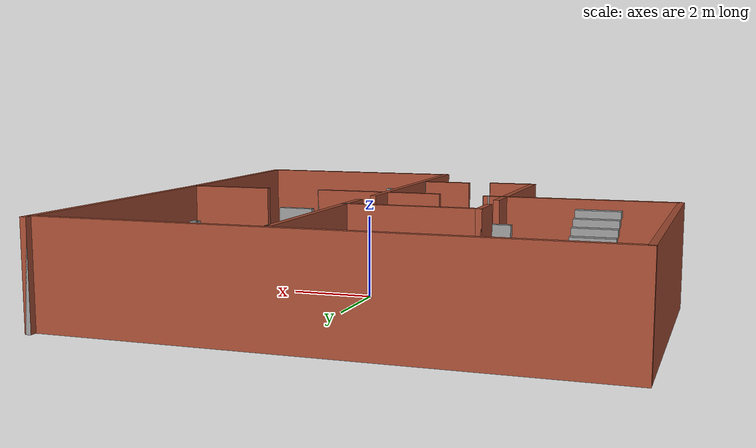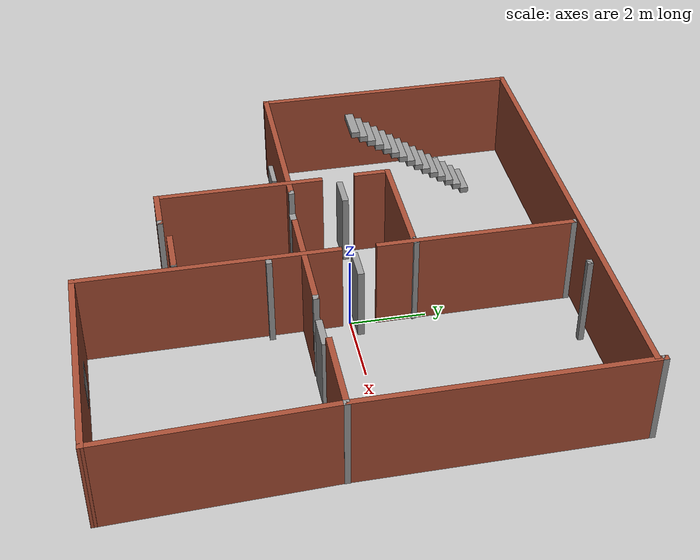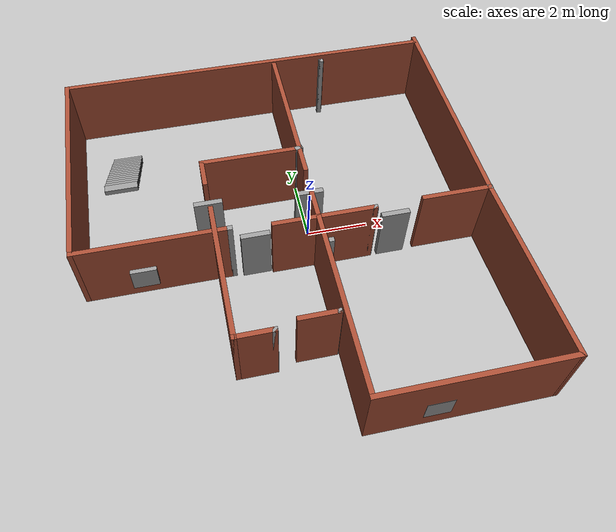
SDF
<?xml version='1.0'?>
<sdf version='1.6'>
  <model name='OneStore_House'>
    <pose frame=''>-0.836558 -0.330219 0 0 -0 0</pose>
    <link name='Door_0'>
      <collision name='Door_0_Collision'>
        <geometry>
          <box>
            <size>0.9 0.17 2</size>
          </box>
        </geometry>
        <pose frame=''>0 0 1 0 -0 0</pose>
      </collision>
      <visual name='Door_0_Visual'>
        <pose frame=''>0 0 1 0 -0 0</pose>
        <geometry>
          <box>
            <size>0.9 0.17 2</size>
          </box>
        </geometry>
        <material>
          <script>
            <uri>file://media/materials/scripts/gazebo.material</uri>
            <name>Gazebo/Grey</name>
          </script>
        </material>
      </visual>
      <pose frame=''>-2.3166 0.73376 0 0 -0 0</pose>
    </link>
    <link name='Door_1'>
      <collision name='Door_1_Collision'>
        <geometry>
          <box>
            <size>0.9 0.17 2</size>
          </box>
        </geometry>
        <pose frame=''>0 0 1 0 -0 0</pose>
      </collision>
      <visual name='Door_1_Visual'>
        <pose frame=''>0 0 1 0 -0 0</pose>
        <geometry>
          <box>
            <size>0.9 0.17 2</size>
          </box>
        </geometry>
        <material>
          <script>
            <uri>file://media/materials/scripts/gazebo.material</uri>
            <name>Gazebo/Grey</name>
          </script>
        </material>
      </visual>
      <pose frame=''>0.864788 0.519629 0 0 -0 0</pose>
    </link>
    <link name='Door_2'>
      <collision name='Door_2_Collision'>
        <geometry>
          <box>
            <size>0.9 0.17 2</size>
          </box>
        </geometry>
        <pose frame=''>0 0 1 0 -0 0</pose>
      </collision>
      <visual name='Door_2_Visual'>
        <pose frame=''>0 0 1 0 -0 0</pose>
        <geometry>
          <box>
            <size>0.9 0.17 2</size>
          </box>
        </geometry>
        <material>
          <script>
            <uri>file://media/materials/scripts/gazebo.material</uri>
            <name>Gazebo/Grey</name>
          </script>
        </material>
      </visual>
      <pose frame=''>-1.09299 -0.765161 0 0 -0 0</pose>
    </link>
    <link name='Door_3'>
      <collision name='Door_3_Collision'>
        <geometry>
          <box>
            <size>0.9 0.17 2</size>
          </box>
        </geometry>
        <pose frame=''>0 0 1 0 -0 0</pose>
      </collision>
      <visual name='Door_3_Visual'>
        <pose frame=''>0 0 1 0 -0 0</pose>
        <geometry>
          <box>
            <size>0.9 0.17 2</size>
          </box>
        </geometry>
        <material>
          <script>
            <uri>file://media/materials/scripts/gazebo.material</uri>
            <name>Gazebo/Grey</name>
          </script>
        </material>
      </visual>
      <pose frame=''>3.28142 -0.826342 0 0 -0 0</pose>
    </link>
    <link name='Stairs_0'>
      <visual name='Stairs_0_Visual_0'>
        <pose frame=''>-4.84735 4.77007 0.083333 0 -0 0</pose>
        <geometry>
          <box>
            <size>1 0.233333 0.166667</size>
          </box>
        </geometry>
        <material>
          <script>
            <uri>file://media/materials/scripts/gazebo.material</uri>
            <name>Gazebo/Grey</name>
          </script>
          <ambient>1 1 1 1</ambient>
        </material>
        <meta>
          <layer>0</layer>
        </meta>
      </visual>
      <collision name='Stairs_0_Collision_0'>
        <geometry>
          <box>
            <size>1 0.233333 0.166667</size>
          </box>
        </geometry>
        <pose frame=''>-4.84735 4.77007 0.083333 0 -0 0</pose>
      </collision>
      <visual name='Stairs_0_Visual_1'>
        <pose frame=''>-4.84735 4.53674 0.25 0 -0 0</pose>
        <geometry>
          <box>
            <size>1 0.233333 0.166667</size>
          </box>
        </geometry>
        <material>
          <script>
            <uri>file://media/materials/scripts/gazebo.material</uri>
            <name>Gazebo/Grey</name>
          </script>
          <ambient>1 1 1 1</ambient>
        </material>
        <meta>
          <layer>0</layer>
        </meta>
      </visual>
      <collision name='Stairs_0_Collision_1'>
        <geometry>
          <box>
            <size>1 0.233333 0.166667</size>
          </box>
        </geometry>
        <pose frame=''>-4.84735 4.53674 0.25 0 -0 0</pose>
      </collision>
      <visual name='Stairs_0_Visual_2'>
        <pose frame=''>-4.84735 4.3034 0.416667 0 -0 0</pose>
        <geometry>
          <box>
            <size>1 0.233333 0.166667</size>
          </box>
        </geometry>
        <material>
          <script>
            <uri>file://media/materials/scripts/gazebo.material</uri>
            <name>Gazebo/Grey</name>
          </script>
          <ambient>1 1 1 1</ambient>
        </material>
        <meta>
          <layer>0</layer>
        </meta>
      </visual>
      <collision name='Stairs_0_Collision_2'>
        <geometry>
          <box>
            <size>1 0.233333 0.166667</size>
          </box>
        </geometry>
        <pose frame=''>-4.84735 4.3034 0.416667 0 -0 0</pose>
      </collision>
      <visual name='Stairs_0_Visual_3'>
        <pose frame=''>-4.84735 4.07007 0.583333 0 -0 0</pose>
        <geometry>
          <box>
            <size>1 0.233333 0.166667</size>
          </box>
        </geometry>
        <material>
          <script>
            <uri>file://media/materials/scripts/gazebo.material</uri>
            <name>Gazebo/Grey</name>
          </script>
          <ambient>1 1 1 1</ambient>
        </material>
        <meta>
          <layer>0</layer>
        </meta>
      </visual>
      <collision name='Stairs_0_Collision_3'>
        <geometry>
          <box>
            <size>1 0.233333 0.166667</size>
          </box>
        </geometry>
        <pose frame=''>-4.84735 4.07007 0.583333 0 -0 0</pose>
      </collision>
      <visual name='Stairs_0_Visual_4'>
        <pose frame=''>-4.84735 3.83674 0.75 0 -0 0</pose>
        <geometry>
          <box>
            <size>1 0.233333 0.166667</size>
          </box>
        </geometry>
        <material>
          <script>
            <uri>file://media/materials/scripts/gazebo.material</uri>
            <name>Gazebo/Grey</name>
          </script>
          <ambient>1 1 1 1</ambient>
        </material>
        <meta>
          <layer>0</layer>
        </meta>
      </visual>
      <collision name='Stairs_0_Collision_4'>
        <geometry>
          <box>
            <size>1 0.233333 0.166667</size>
          </box>
        </geometry>
        <pose frame=''>-4.84735 3.83674 0.75 0 -0 0</pose>
      </collision>
      <visual name='Stairs_0_Visual_5'>
        <pose frame=''>-4.84735 3.6034 0.916667 0 -0 0</pose>
        <geometry>
          <box>
            <size>1 0.233333 0.166667</size>
          </box>
        </geometry>
        <material>
          <script>
            <uri>file://media/materials/scripts/gazebo.material</uri>
            <name>Gazebo/Grey</name>
          </script>
          <ambient>1 1 1 1</ambient>
        </material>
        <meta>
          <layer>0</layer>
        </meta>
      </visual>
      <collision name='Stairs_0_Collision_5'>
        <geometry>
          <box>
            <size>1 0.233333 0.166667</size>
          </box>
        </geometry>
        <pose frame=''>-4.84735 3.6034 0.916667 0 -0 0</pose>
      </collision>
      <visual name='Stairs_0_Visual_6'>
        <pose frame=''>-4.84735 3.37007 1.08333 0 -0 0</pose>
        <geometry>
          <box>
            <size>1 0.233333 0.166667</size>
          </box>
        </geometry>
        <material>
          <script>
            <uri>file://media/materials/scripts/gazebo.material</uri>
            <name>Gazebo/Grey</name>
          </script>
          <ambient>1 1 1 1</ambient>
        </material>
        <meta>
          <layer>0</layer>
        </meta>
      </visual>
      <collision name='Stairs_0_Collision_6'>
        <geometry>
          <box>
            <size>1 0.233333 0.166667</size>
          </box>
        </geometry>
        <pose frame=''>-4.84735 3.37007 1.08333 0 -0 0</pose>
      </collision>
      <visual name='Stairs_0_Visual_7'>
        <pose frame=''>-4.84735 3.13674 1.25 0 -0 0</pose>
        <geometry>
          <box>
            <size>1 0.233333 0.166667</size>
          </box>
        </geometry>
        <material>
          <script>
            <uri>file://media/materials/scripts/gazebo.material</uri>
            <name>Gazebo/Grey</name>
          </script>
          <ambient>1 1 1 1</ambient>
        </material>
        <meta>
          <layer>0</layer>
        </meta>
      </visual>
      <collision name='Stairs_0_Collision_7'>
        <geometry>
          <box>
            <size>1 0.233333 0.166667</size>
          </box>
        </geometry>
        <pose frame=''>-4.84735 3.13674 1.25 0 -0 0</pose>
      </collision>
      <visual name='Stairs_0_Visual_8'>
        <pose frame=''>-4.84735 2.9034 1.41667 0 -0 0</pose>
        <geometry>
          <box>
            <size>1 0.233333 0.166667</size>
          </box>
        </geometry>
        <material>
          <script>
            <uri>file://media/materials/scripts/gazebo.material</uri>
            <name>Gazebo/Grey</name>
          </script>
          <ambient>1 1 1 1</ambient>
        </material>
        <meta>
          <layer>0</layer>
        </meta>
      </visual>
      <collision name='Stairs_0_Collision_8'>
        <geometry>
          <box>
            <size>1 0.233333 0.166667</size>
          </box>
        </geometry>
        <pose frame=''>-4.84735 2.9034 1.41667 0 -0 0</pose>
      </collision>
      <visual name='Stairs_0_Visual_9'>
        <pose frame=''>-4.84735 2.67007 1.58333 0 -0 0</pose>
        <geometry>
          <box>
            <size>1 0.233333 0.166667</size>
          </box>
        </geometry>
        <material>
          <script>
            <uri>file://media/materials/scripts/gazebo.material</uri>
            <name>Gazebo/Grey</name>
          </script>
          <ambient>1 1 1 1</ambient>
        </material>
        <meta>
          <layer>0</layer>
        </meta>
      </visual>
      <collision name='Stairs_0_Collision_9'>
        <geometry>
          <box>
            <size>1 0.233333 0.166667</size>
          </box>
        </geometry>
        <pose frame=''>-4.84735 2.67007 1.58333 0 -0 0</pose>
      </collision>
      <visual name='Stairs_0_Visual_10'>
        <pose frame=''>-4.84735 2.43674 1.75 0 -0 0</pose>
        <geometry>
          <box>
            <size>1 0.233333 0.166667</size>
          </box>
        </geometry>
        <material>
          <script>
            <uri>file://media/materials/scripts/gazebo.material</uri>
            <name>Gazebo/Grey</name>
          </script>
          <ambient>1 1 1 1</ambient>
        </material>
        <meta>
          <layer>0</layer>
        </meta>
      </visual>
      <collision name='Stairs_0_Collision_10'>
        <geometry>
          <box>
            <size>1 0.233333 0.166667</size>
          </box>
        </geometry>
        <pose frame=''>-4.84735 2.43674 1.75 0 -0 0</pose>
      </collision>
      <visual name='Stairs_0_Visual_11'>
        <pose frame=''>-4.84735 2.2034 1.91667 0 -0 0</pose>
        <geometry>
          <box>
            <size>1 0.233333 0.166667</size>
          </box>
        </geometry>
        <material>
          <script>
            <uri>file://media/materials/scripts/gazebo.material</uri>
            <name>Gazebo/Grey</name>
          </script>
          <ambient>1 1 1 1</ambient>
        </material>
        <meta>
          <layer>0</layer>
        </meta>
      </visual>
      <collision name='Stairs_0_Collision_11'>
        <geometry>
          <box>
            <size>1 0.233333 0.166667</size>
          </box>
        </geometry>
        <pose frame=''>-4.84735 2.2034 1.91667 0 -0 0</pose>
      </collision>
      <visual name='Stairs_0_Visual_12'>
        <pose frame=''>-4.84735 1.97007 2.08333 0 -0 0</pose>
        <geometry>
          <box>
            <size>1 0.233333 0.166667</size>
          </box>
        </geometry>
        <material>
          <script>
            <uri>file://media/materials/scripts/gazebo.material</uri>
            <name>Gazebo/Grey</name>
          </script>
          <ambient>1 1 1 1</ambient>
        </material>
        <meta>
          <layer>0</layer>
        </meta>
      </visual>
      <collision name='Stairs_0_Collision_12'>
        <geometry>
          <box>
            <size>1 0.233333 0.166667</size>
          </box>
        </geometry>
        <pose frame=''>-4.84735 1.97007 2.08333 0 -0 0</pose>
      </collision>
      <visual name='Stairs_0_Visual_13'>
        <pose frame=''>-4.84735 1.73674 2.25 0 -0 0</pose>
        <geometry>
          <box>
            <size>1 0.233333 0.166667</size>
          </box>
        </geometry>
        <material>
          <script>
            <uri>file://media/materials/scripts/gazebo.material</uri>
            <name>Gazebo/Grey</name>
          </script>
          <ambient>1 1 1 1</ambient>
        </material>
        <meta>
          <layer>0</layer>
        </meta>
      </visual>
      <collision name='Stairs_0_Collision_13'>
        <geometry>
          <box>
            <size>1 0.233333 0.166667</size>
          </box>
        </geometry>
        <pose frame=''>-4.84735 1.73674 2.25 0 -0 0</pose>
      </collision>
      <visual name='Stairs_0_Visual_14'>
        <pose frame=''>-4.84735 1.5034 2.41667 0 -0 0</pose>
        <geometry>
          <box>
            <size>1 0.233333 0.166667</size>
          </box>
        </geometry>
        <material>
          <script>
            <uri>file://media/materials/scripts/gazebo.material</uri>
            <name>Gazebo/Grey</name>
          </script>
          <ambient>1 1 1 1</ambient>
        </material>
        <meta>
          <layer>0</layer>
        </meta>
      </visual>
      <collision name='Stairs_0_Collision_14'>
        <geometry>
          <box>
            <size>1 0.233333 0.166667</size>
          </box>
        </geometry>
        <pose frame=''>-4.84735 1.5034 2.41667 0 -0 0</pose>
      </collision>
    </link>
    <link name='Wall_11'>
      <collision name='Wall_11_Collision'>
        <geometry>
          <box>
            <size>12.75 0.15 2.5</size>
          </box>
        </geometry>
        <pose frame=''>0 0 1.25 0 -0 0</pose>
      </collision>
      <visual name='Wall_11_Visual'>
        <pose frame=''>0 0 1.25 0 -0 0</pose>
        <geometry>
          <box>
            <size>12.75 0.15 2.5</size>
          </box>
        </geometry>
        <material>
          <script>
            <uri>file://media/materials/scripts/gazebo.material</uri>
            <name>Gazebo/Bricks</name>
          </script>
          <ambient>1 1 1 1</ambient>
        </material>
        <meta>
          <layer>0</layer>
        </meta>
      </visual>
      <pose frame=''>-0.130955 6.36951 0 0 -0 3.14159</pose>
    </link>
    <link name='Wall_12'>
      <collision name='Wall_12_Collision'>
        <geometry>
          <box>
            <size>7.25 0.15 2.5</size>
          </box>
        </geometry>
        <pose frame=''>0 0 1.25 0 -0 0</pose>
      </collision>
      <visual name='Wall_12_Visual'>
        <pose frame=''>0 0 1.25 0 -0 0</pose>
        <geometry>
          <box>
            <size>7.25 0.15 2.5</size>
          </box>
        </geometry>
        <material>
          <script>
            <uri>file://media/materials/scripts/gazebo.material</uri>
            <name>Gazebo/Bricks</name>
          </script>
          <ambient>1 1 1 1</ambient>
        </material>
        <meta>
          <layer>0</layer>
        </meta>
      </visual>
      <pose frame=''>-6.43095 2.81951 0 0 -0 -1.5708</pose>
    </link>
    <link name='Wall_13'>
      <collision name='Wall_13_Collision'>
        <geometry>
          <box>
            <size>4.75 0.15 2.5</size>
          </box>
        </geometry>
        <pose frame=''>0 0 1.25 0 -0 0</pose>
      </collision>
      <visual name='Wall_13_Visual'>
        <pose frame=''>0 0 1.25 0 -0 0</pose>
        <geometry>
          <box>
            <size>4.75 0.15 2.5</size>
          </box>
        </geometry>
        <material>
          <script>
            <uri>file://media/materials/scripts/gazebo.material</uri>
            <name>Gazebo/Bricks</name>
          </script>
          <ambient>1 1 1 1</ambient>
        </material>
        <meta>
          <layer>0</layer>
        </meta>
      </visual>
      <pose frame=''>-4.13095 -0.730486 0 0 -0 0</pose>
    </link>
    <link name='Wall_14'>
      <collision name='Wall_14_Collision'>
        <geometry>
          <box>
            <size>0.16 0.15 2.5</size>
          </box>
        </geometry>
        <pose frame=''>0 0 1.25 0 -0 0</pose>
      </collision>
      <visual name='Wall_14_Visual'>
        <pose frame=''>0 0 1.25 0 -0 0</pose>
        <geometry>
          <box>
            <size>0.16 0.15 2.5</size>
          </box>
        </geometry>
        <material>
          <script>
            <uri>file://media/materials/scripts/gazebo.material</uri>
            <name>Gazebo/Grey</name>
          </script>
          <ambient>1 1 1 1</ambient>
        </material>
        <meta>
          <layer>0</layer>
        </meta>
      </visual>
      <pose frame=''>-1.82595 -0.730486 0 0 -0 0</pose>
    </link>
    <link name='Wall_16'>
      <collision name='Wall_16_Collision'>
        <geometry>
          <box>
            <size>3.25 0.15 2.5</size>
          </box>
        </geometry>
        <pose frame=''>0 0 1.25 0 -0 0</pose>
      </collision>
      <visual name='Wall_16_Visual'>
        <pose frame=''>0 0 1.25 0 -0 0</pose>
        <geometry>
          <box>
            <size>3.25 0.15 2.5</size>
          </box>
        </geometry>
        <material>
          <script>
            <uri>file://media/materials/scripts/gazebo.material</uri>
            <name>Gazebo/Bricks</name>
          </script>
          <ambient>1 1 1 1</ambient>
        </material>
        <meta>
          <layer>0</layer>
        </meta>
      </visual>
      <pose frame=''>1.02157 -0.841259 0 0 -0 0</pose>
    </link>
    <link name='Wall_17'>
      <collision name='Wall_17_Collision'>
        <geometry>
          <box>
            <size>0.16 0.15 2.5</size>
          </box>
        </geometry>
        <pose frame=''>0 0 1.25 0 -0 0</pose>
      </collision>
      <visual name='Wall_17_Visual'>
        <pose frame=''>0 0 1.25 0 -0 0</pose>
        <geometry>
          <box>
            <size>0.16 0.15 2.5</size>
          </box>
        </geometry>
        <material>
          <script>
            <uri>file://media/materials/scripts/gazebo.material</uri>
            <name>Gazebo/Grey</name>
          </script>
          <ambient>1 1 1 1</ambient>
        </material>
        <meta>
          <layer>0</layer>
        </meta>
      </visual>
      <pose frame=''>2.57657 -0.841259 0 0 -0 0</pose>
    </link>
    <link name='Wall_19'>
      <collision name='Wall_19_Collision'>
        <geometry>
          <box>
            <size>5.25 0.15 2.5</size>
          </box>
        </geometry>
        <pose frame=''>0 0 1.25 0 -0 0</pose>
      </collision>
      <visual name='Wall_19_Visual'>
        <pose frame=''>0 0 1.25 0 -0 0</pose>
        <geometry>
          <box>
            <size>5.25 0.15 2.5</size>
          </box>
        </geometry>
        <material>
          <script>
            <uri>file://media/materials/scripts/gazebo.material</uri>
            <name>Gazebo/Bricks</name>
          </script>
          <ambient>1 1 1 1</ambient>
        </material>
        <meta>
          <layer>0</layer>
        </meta>
      </visual>
      <pose frame=''>0.854779 3.62396 0 0 -0 1.5708</pose>
    </link>
    <link name='Wall_20'>
      <collision name='Wall_20_Collision'>
        <geometry>
          <box>
            <size>0.15 0.15 2.5</size>
          </box>
        </geometry>
        <pose frame=''>0 0 1.25 0 -0 0</pose>
      </collision>
      <visual name='Wall_20_Visual'>
        <pose frame=''>0 0 1.25 0 -0 0</pose>
        <geometry>
          <box>
            <size>0.15 0.15 2.5</size>
          </box>
        </geometry>
        <material>
          <script>
            <uri>file://media/materials/scripts/gazebo.material</uri>
            <name>Gazebo/Grey</name>
          </script>
          <ambient>1 1 1 1</ambient>
        </material>
        <meta>
          <layer>0</layer>
        </meta>
      </visual>
      <pose frame=''>0.854779 6.17396 0 0 -0 0</pose>
    </link>
    <link name='Wall_22'>
      <collision name='Wall_22_Collision'>
        <geometry>
          <box>
            <size>1 0.15 2.5</size>
          </box>
        </geometry>
        <pose frame=''>0 0 1.25 0 -0 0</pose>
      </collision>
      <visual name='Wall_22_Visual'>
        <pose frame=''>0 0 1.25 0 -0 0</pose>
        <geometry>
          <box>
            <size>1 0.15 2.5</size>
          </box>
        </geometry>
        <material>
          <script>
            <uri>file://media/materials/scripts/gazebo.material</uri>
            <name>Gazebo/Bricks</name>
          </script>
          <ambient>1 1 1 1</ambient>
        </material>
        <meta>
          <layer>0</layer>
        </meta>
      </visual>
      <pose frame=''>-2.31065 1.55215 0 0 -0 1.5708</pose>
    </link>
    <link name='Wall_23'>
      <collision name='Wall_23_Collision'>
        <geometry>
          <box>
            <size>3.25 0.15 2.5</size>
          </box>
        </geometry>
        <pose frame=''>0 0 1.25 0 -0 0</pose>
      </collision>
      <visual name='Wall_23_Visual'>
        <pose frame=''>0 0 1.25 0 -0 0</pose>
        <geometry>
          <box>
            <size>3.25 0.15 2.5</size>
          </box>
        </geometry>
        <material>
          <script>
            <uri>file://media/materials/scripts/gazebo.material</uri>
            <name>Gazebo/Bricks</name>
          </script>
          <ambient>1 1 1 1</ambient>
        </material>
        <meta>
          <layer>0</layer>
        </meta>
      </visual>
      <pose frame=''>-0.760645 1.97715 0 0 -0 0</pose>
    </link>
    <link name='Wall_24'>
      <collision name='Wall_24_Collision'>
        <geometry>
          <box>
            <size>0.25 0.15 2.5</size>
          </box>
        </geometry>
        <pose frame=''>0 0 1.25 0 -0 0</pose>
      </collision>
      <visual name='Wall_24_Visual'>
        <pose frame=''>0 0 1.25 0 -0 0</pose>
        <geometry>
          <box>
            <size>0.25 0.15 2.5</size>
          </box>
        </geometry>
        <material>
          <script>
            <uri>file://media/materials/scripts/gazebo.material</uri>
            <name>Gazebo/Grey</name>
          </script>
          <ambient>1 1 1 1</ambient>
        </material>
        <meta>
          <layer>0</layer>
        </meta>
      </visual>
      <pose frame=''>0.837651 1.9901 0 0 -0 0.261799</pose>
    </link>
    <link name='Wall_26'>
      <collision name='Wall_26_Collision'>
        <geometry>
          <box>
            <size>2.25 0.15 2.5</size>
          </box>
        </geometry>
        <pose frame=''>0 0 1.25 0 -0 0</pose>
      </collision>
      <visual name='Wall_26_Visual'>
        <pose frame=''>0 0 1.25 0 -0 0</pose>
        <geometry>
          <box>
            <size>2.25 0.15 2.5</size>
          </box>
        </geometry>
        <material>
          <script>
            <uri>file://media/materials/scripts/gazebo.material</uri>
            <name>Gazebo/Bricks</name>
          </script>
          <ambient>1 1 1 1</ambient>
        </material>
        <meta>
          <layer>0</layer>
        </meta>
      </visual>
      <pose frame=''>5.19082 -0.800542 0 0 -0 0</pose>
    </link>
    <link name='Wall_27'>
      <collision name='Wall_27_Collision'>
        <geometry>
          <box>
            <size>7.5 0.15 2.5</size>
          </box>
        </geometry>
        <pose frame=''>0 0 1.25 0 -0 0</pose>
      </collision>
      <visual name='Wall_27_Visual'>
        <pose frame=''>0 0 1.25 0 -0 0</pose>
        <geometry>
          <box>
            <size>7.5 0.15 2.5</size>
          </box>
        </geometry>
        <material>
          <script>
            <uri>file://media/materials/scripts/gazebo.material</uri>
            <name>Gazebo/Bricks</name>
          </script>
          <ambient>1 1 1 1</ambient>
        </material>
        <meta>
          <layer>0</layer>
        </meta>
      </visual>
      <pose frame=''>6.24082 2.87446 0 0 -0 1.5708</pose>
    </link>
    <link name='Wall_28'>
      <collision name='Wall_28_Collision'>
        <geometry>
          <box>
            <size>0.15 0.15 2.5</size>
          </box>
        </geometry>
        <pose frame=''>0 0 1.25 0 -0 0</pose>
      </collision>
      <visual name='Wall_28_Visual'>
        <pose frame=''>0 0 1.25 0 -0 0</pose>
        <geometry>
          <box>
            <size>0.15 0.15 2.5</size>
          </box>
        </geometry>
        <material>
          <script>
            <uri>file://media/materials/scripts/gazebo.material</uri>
            <name>Gazebo/Grey</name>
          </script>
          <ambient>1 1 1 1</ambient>
        </material>
        <meta>
          <layer>0</layer>
        </meta>
      </visual>
      <pose frame=''>6.24082 6.54946 0 0 -0 0</pose>
    </link>
    <link name='Wall_3'>
      <collision name='Wall_3_Collision'>
        <geometry>
          <box>
            <size>0.15 0.15 2.5</size>
          </box>
        </geometry>
        <pose frame=''>0 0 1.25 0 -0 0</pose>
      </collision>
      <visual name='Wall_3_Visual'>
        <pose frame=''>0 0 1.25 0 -0 0</pose>
        <geometry>
          <box>
            <size>0.15 0.15 2.5</size>
          </box>
        </geometry>
        <material>
          <script>
            <uri>file://media/materials/scripts/gazebo.material</uri>
            <name>Gazebo/Grey</name>
          </script>
          <ambient>1 1 1 1</ambient>
        </material>
        <meta>
          <layer>0</layer>
        </meta>
      </visual>
      <pose frame=''>2.54467 6.02205 0 0 -0 0</pose>
    </link>
    <link name='Wall_31'>
      <collision name='Wall_31_Collision'>
        <geometry>
          <box>
            <size>0.16 0.15 2.5</size>
          </box>
        </geometry>
        <pose frame=''>0 0 1.25 0 -0 0</pose>
      </collision>
      <visual name='Wall_31_Visual'>
        <pose frame=''>0 0 1.25 0 -0 0</pose>
        <geometry>
          <box>
            <size>0.16 0.15 2.5</size>
          </box>
        </geometry>
        <material>
          <script>
            <uri>file://media/materials/scripts/gazebo.material</uri>
            <name>Gazebo/Grey</name>
          </script>
          <ambient>1 1 1 1</ambient>
        </material>
        <meta>
          <layer>0</layer>
        </meta>
      </visual>
      <pose frame=''>0.994053 -1.74258 0 0 -0 0</pose>
    </link>
    <link name='Wall_33'>
      <collision name='Wall_33_Collision'>
        <geometry>
          <box>
            <size>6.75 0.15 2.5</size>
          </box>
        </geometry>
        <pose frame=''>0 0 1.25 0 -0 0</pose>
      </collision>
      <visual name='Wall_33_Visual'>
        <pose frame=''>0 0 1.25 0 -0 0</pose>
        <geometry>
          <box>
            <size>6.75 0.15 2.5</size>
          </box>
        </geometry>
        <material>
          <script>
            <uri>file://media/materials/scripts/gazebo.material</uri>
            <name>Gazebo/Bricks</name>
          </script>
          <ambient>1 1 1 1</ambient>
        </material>
        <meta>
          <layer>0</layer>
        </meta>
      </visual>
      <pose frame=''>0.828546 -3.24705 0 0 -0 -1.5708</pose>
    </link>
    <link name='Wall_34'>
      <collision name='Wall_34_Collision'>
        <geometry>
          <box>
            <size>5.75 0.15 2.5</size>
          </box>
        </geometry>
        <pose frame=''>0 0 1.25 0 -0 0</pose>
      </collision>
      <visual name='Wall_34_Visual'>
        <pose frame=''>0 0 1.25 0 -0 0</pose>
        <geometry>
          <box>
            <size>5.75 0.15 2.5</size>
          </box>
        </geometry>
        <material>
          <script>
            <uri>file://media/materials/scripts/gazebo.material</uri>
            <name>Gazebo/Bricks</name>
          </script>
          <ambient>1 1 1 1</ambient>
        </material>
        <meta>
          <layer>0</layer>
        </meta>
      </visual>
      <pose frame=''>3.62855 -6.54705 0 0 -0 0</pose>
    </link>
    <link name='Wall_35'>
      <collision name='Wall_35_Collision'>
        <geometry>
          <box>
            <size>5.89957 0.15 2.5</size>
          </box>
        </geometry>
        <pose frame=''>0 0 1.25 0 -0 0</pose>
      </collision>
      <visual name='Wall_35_Visual'>
        <pose frame=''>0 0 1.25 0 -0 0</pose>
        <geometry>
          <box>
            <size>5.89957 0.15 2.5</size>
          </box>
        </geometry>
        <material>
          <script>
            <uri>file://media/materials/scripts/gazebo.material</uri>
            <name>Gazebo/Bricks</name>
          </script>
          <ambient>1 1 1 1</ambient>
        </material>
        <meta>
          <layer>0</layer>
        </meta>
      </visual>
      <pose frame=''>6.33468 -3.6738 0 0 -0 1.60345</pose>
    </link>
    <link name='Wall_36'>
      <collision name='Wall_36_Collision'>
        <geometry>
          <box>
            <size>0.16 0.15 2.5</size>
          </box>
        </geometry>
        <pose frame=''>0 0 1.25 0 -0 0</pose>
      </collision>
      <visual name='Wall_36_Visual'>
        <pose frame=''>0 0 1.25 0 -0 0</pose>
        <geometry>
          <box>
            <size>0.16 0.15 2.5</size>
          </box>
        </geometry>
        <material>
          <script>
            <uri>file://media/materials/scripts/gazebo.material</uri>
            <name>Gazebo/Grey</name>
          </script>
          <ambient>1 1 1 1</ambient>
        </material>
        <meta>
          <layer>0</layer>
        </meta>
      </visual>
      <pose frame=''>6.24582 -0.800542 0 0 -0 0</pose>
    </link>
    <link name='Wall_38'>
      <collision name='Wall_38_Collision'>
        <geometry>
          <box>
            <size>4.5 0.15 2.5</size>
          </box>
        </geometry>
        <pose frame=''>0 0 1.25 0 -0 0</pose>
      </collision>
      <visual name='Wall_38_Visual'>
        <pose frame=''>0 0 1.25 0 -0 0</pose>
        <geometry>
          <box>
            <size>4.5 0.15 2.5</size>
          </box>
        </geometry>
        <material>
          <script>
            <uri>file://media/materials/scripts/gazebo.material</uri>
            <name>Gazebo/Bricks</name>
          </script>
          <ambient>1 1 1 1</ambient>
        </material>
        <meta>
          <layer>0</layer>
        </meta>
      </visual>
      <pose frame=''>-2.2746 -2.06855 0 0 -0 -1.5708</pose>
    </link>
    <link name='Wall_39'>
      <collision name='Wall_39_Collision'>
        <geometry>
          <box>
            <size>1.25 0.15 2.5</size>
          </box>
        </geometry>
        <pose frame=''>0 0 1.25 0 -0 0</pose>
      </collision>
      <visual name='Wall_39_Visual'>
        <pose frame=''>0 0 1.25 0 -0 0</pose>
        <geometry>
          <box>
            <size>1.25 0.15 2.5</size>
          </box>
        </geometry>
        <material>
          <script>
            <uri>file://media/materials/scripts/gazebo.material</uri>
            <name>Gazebo/Bricks</name>
          </script>
          <ambient>1 1 1 1</ambient>
        </material>
        <meta>
          <layer>0</layer>
        </meta>
      </visual>
      <pose frame=''>-1.7246 -4.24355 0 0 -0 0</pose>
    </link>
    <link name='Wall_4'>
      <collision name='Wall_4_Collision'>
        <geometry>
          <box>
            <size>0.16 0.15 2.5</size>
          </box>
        </geometry>
        <pose frame=''>0 0 1.25 0 -0 0</pose>
      </collision>
      <visual name='Wall_4_Visual'>
        <pose frame=''>0 0 1.25 0 -0 0</pose>
        <geometry>
          <box>
            <size>0.16 0.15 2.5</size>
          </box>
        </geometry>
        <material>
          <script>
            <uri>file://media/materials/scripts/gazebo.material</uri>
            <name>Gazebo/Grey</name>
          </script>
          <ambient>1 1 1 1</ambient>
        </material>
        <meta>
          <layer>0</layer>
        </meta>
      </visual>
      <pose frame=''>2.54967 6.02205 0 0 -0 0</pose>
    </link>
    <link name='Wall_40'>
      <collision name='Wall_40_Collision'>
        <geometry>
          <box>
            <size>0.16 0.15 2.5</size>
          </box>
        </geometry>
        <pose frame=''>0 0 1.25 0 -0 0</pose>
      </collision>
      <visual name='Wall_40_Visual'>
        <pose frame=''>0 0 1.25 0 -0 0</pose>
        <geometry>
          <box>
            <size>0.16 0.15 2.5</size>
          </box>
        </geometry>
        <material>
          <script>
            <uri>file://media/materials/scripts/gazebo.material</uri>
            <name>Gazebo/Grey</name>
          </script>
          <ambient>1 1 1 1</ambient>
        </material>
        <meta>
          <layer>0</layer>
        </meta>
      </visual>
      <pose frame=''>-1.1696 -4.24355 0 0 -0 0</pose>
    </link>
    <link name='Wall_42'>
      <collision name='Wall_42_Collision'>
        <geometry>
          <box>
            <size>1.25 0.15 2.5</size>
          </box>
        </geometry>
        <pose frame=''>0 0 1.25 0 -0 0</pose>
      </collision>
      <visual name='Wall_42_Visual'>
        <pose frame=''>0 0 1.25 0 -0 0</pose>
        <geometry>
          <box>
            <size>1.25 0.15 2.5</size>
          </box>
        </geometry>
        <material>
          <script>
            <uri>file://media/materials/scripts/gazebo.material</uri>
            <name>Gazebo/Bricks</name>
          </script>
          <ambient>1 1 1 1</ambient>
        </material>
        <meta>
          <layer>0</layer>
        </meta>
      </visual>
      <pose frame=''>0.0831 -4.05545 0 0 -0 0</pose>
    </link>
    <link name='Wall_43'>
      <collision name='Wall_43_Collision'>
        <geometry>
          <box>
            <size>0.16 0.15 2.5</size>
          </box>
        </geometry>
        <pose frame=''>0 0 1.25 0 -0 0</pose>
      </collision>
      <visual name='Wall_43_Visual'>
        <pose frame=''>0 0 1.25 0 -0 0</pose>
        <geometry>
          <box>
            <size>0.16 0.15 2.5</size>
          </box>
        </geometry>
        <material>
          <script>
            <uri>file://media/materials/scripts/gazebo.material</uri>
            <name>Gazebo/Grey</name>
          </script>
          <ambient>1 1 1 1</ambient>
        </material>
        <meta>
          <layer>0</layer>
        </meta>
      </visual>
      <pose frame=''>0.6381 -4.05545 0 0 -0 0</pose>
    </link>
    <link name='Window_0'>
      <collision name='Window_0_Collision'>
        <geometry>
          <box>
            <size>0.8 0.17 0.8</size>
          </box>
        </geometry>
        <pose frame=''>0 0 0.4 0 -0 0</pose>
      </collision>
      <visual name='Window_0_Visual'>
        <pose frame=''>0 0 0.4 0 -0 0</pose>
        <geometry>
          <box>
            <size>0.8 0.17 0.8</size>
          </box>
        </geometry>
        <material>
          <script>
            <uri>file://media/materials/scripts/gazebo.material</uri>
            <name>Gazebo/Grey</name>
          </script>
        </material>
      </visual>
      <pose frame=''>-4.54968 -0.856932 0.5 0 -0 0</pose>
    </link>
    <link name='Window_1'>
      <collision name='Window_1_Collision'>
        <geometry>
          <box>
            <size>0.8 0.17 0.8</size>
          </box>
        </geometry>
        <pose frame=''>0 0 0.4 0 -0 0</pose>
      </collision>
      <visual name='Window_1_Visual'>
        <pose frame=''>0 0 0.4 0 -0 0</pose>
        <geometry>
          <box>
            <size>0.8 0.17 0.8</size>
          </box>
        </geometry>
        <material>
          <script>
            <uri>file://media/materials/scripts/gazebo.material</uri>
            <name>Gazebo/Grey</name>
          </script>
        </material>
      </visual>
      <pose frame=''>2.82256 -6.54671 0.5 0 -0 0</pose>
    </link>
    <static>1</static>
  </model>
</sdf>
